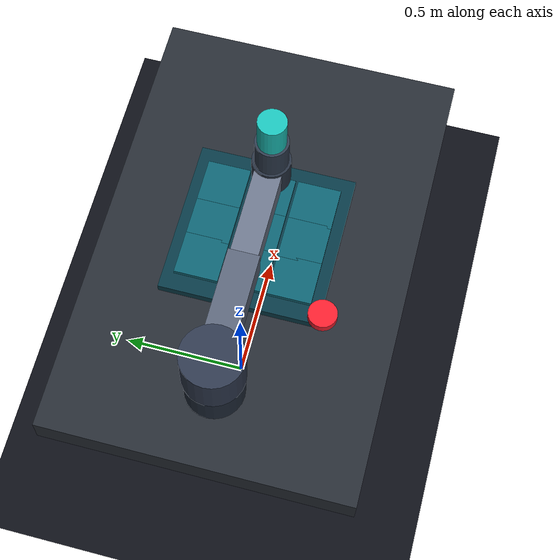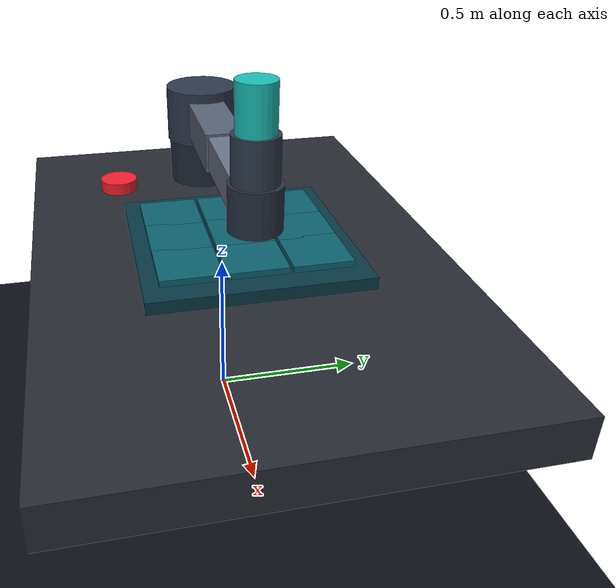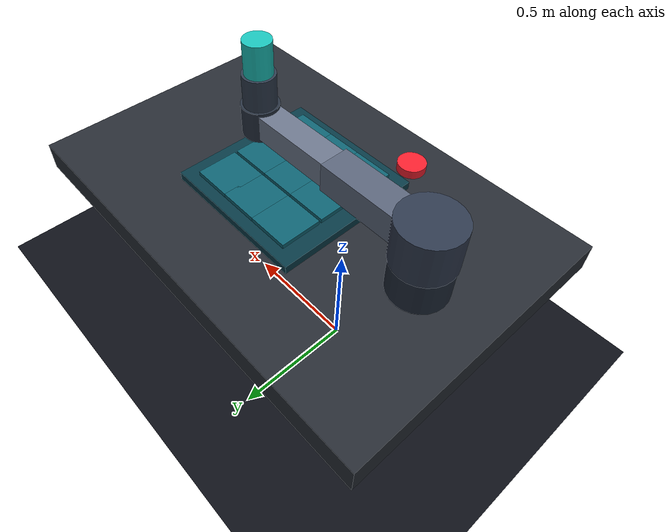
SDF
<?xml version="1.0"?>
<sdf version="1.9">
  <world name="robotlab_ur5e_cell">
    <gravity>0 0 -9.81</gravity>
    <plugin filename="gz-sim-physics-system" name="gz::sim::systems::Physics"/>
    <plugin filename="gz-sim-user-commands-system" name="gz::sim::systems::UserCommands"/>
    <plugin filename="gz-sim-scene-broadcaster-system" name="gz::sim::systems::SceneBroadcaster"/>
    <plugin filename="gz-sim-sensors-system" name="gz::sim::systems::Sensors"><render_engine>ogre2</render_engine></plugin>
    <gui fullscreen="0">
      <plugin filename="MinimalScene" name="3D View"><engine>ogre2</engine><scene>scene</scene><ambient_light>0.65 0.65 0.65</ambient_light><background_color>0.02 0.03 0.06</background_color><camera_pose>-1.35 -1.35 1.55 0 0.68 0.78</camera_pose><camera_clip><near>0.01</near><far>100</far></camera_clip></plugin>
      <plugin filename="GzSceneManager" name="Scene Manager"/>
    </gui>
    <scene><ambient>0.25 0.25 0.28 1</ambient><background>0.02 0.03 0.06 1</background><shadows>true</shadows></scene>
    <light name="key_light" type="directional"><cast_shadows>true</cast_shadows><pose>-1 -1 3 0.4 0 0</pose><diffuse>0.95 0.95 0.9 1</diffuse><specular>0.25 0.25 0.25 1</specular><direction>0.3 0.2 -1</direction></light>
    <model name="ground"><static>true</static><link name="link"><collision name="collision"><geometry><plane><normal>0 0 1</normal><size>20 20</size></plane></geometry></collision><visual name="visual"><geometry><plane><normal>0 0 1</normal><size>20 20</size></plane></geometry><material><diffuse>0.05 0.06 0.09 1</diffuse></material></visual></link></model>
    <model name="worktable"><static>true</static><pose>0.25 0 0.62 0 0 0</pose><link name="link"><collision name="collision"><geometry><box><size>1.8 1.2 0.12</size></box></geometry></collision><visual name="visual"><geometry><box><size>1.8 1.2 0.12</size></box></geometry><material><diffuse>0.15 0.17 0.2 1</diffuse></material></visual></link></model>
    <model name="board"><static>true</static><pose>0.28 0 0.72 0 0 0</pose><link name="link"><collision name="collision"><geometry><box><size>0.62 0.62 0.035</size></box></geometry></collision><visual name="visual"><geometry><box><size>0.62 0.62 0.035</size></box></geometry><material><diffuse>0.03 0.22 0.27 1</diffuse><ambient>0.02 0.08 0.1 1</ambient></material></visual></link></model>
    <!-- Cell centres, row-major 0..8. -->
    <model name="cell_0"><static>true</static><pose>0.12 -0.18 0.75 0 0 0</pose><link name="link"><visual name="visual"><geometry><box><size>0.17 0.17 0.018</size></box></geometry><material><diffuse>0.05 0.38 0.44 1</diffuse></material></visual></link></model>
    <model name="cell_1"><static>true</static><pose>0.28 -0.18 0.75 0 0 0</pose><link name="link"><visual name="visual"><geometry><box><size>0.17 0.17 0.018</size></box></geometry><material><diffuse>0.05 0.38 0.44 1</diffuse></material></visual></link></model>
    <model name="cell_2"><static>true</static><pose>0.44 -0.18 0.75 0 0 0</pose><link name="link"><visual name="visual"><geometry><box><size>0.17 0.17 0.018</size></box></geometry><material><diffuse>0.05 0.38 0.44 1</diffuse></material></visual></link></model>
    <model name="cell_3"><static>true</static><pose>0.12 0 0.75 0 0 0</pose><link name="link"><visual name="visual"><geometry><box><size>0.17 0.17 0.018</size></box></geometry><material><diffuse>0.05 0.38 0.44 1</diffuse></material></visual></link></model>
    <model name="cell_4"><static>true</static><pose>0.28 0 0.75 0 0 0</pose><link name="link"><visual name="visual"><geometry><box><size>0.17 0.17 0.018</size></box></geometry><material><diffuse>0.05 0.38 0.44 1</diffuse></material></visual></link></model>
    <model name="cell_5"><static>true</static><pose>0.44 0 0.75 0 0 0</pose><link name="link"><visual name="visual"><geometry><box><size>0.17 0.17 0.018</size></box></geometry><material><diffuse>0.05 0.38 0.44 1</diffuse></material></visual></link></model>
    <model name="cell_6"><static>true</static><pose>0.12 0.18 0.75 0 0 0</pose><link name="link"><visual name="visual"><geometry><box><size>0.17 0.17 0.018</size></box></geometry><material><diffuse>0.05 0.38 0.44 1</diffuse></material></visual></link></model>
    <model name="cell_7"><static>true</static><pose>0.28 0.18 0.75 0 0 0</pose><link name="link"><visual name="visual"><geometry><box><size>0.17 0.17 0.018</size></box></geometry><material><diffuse>0.05 0.38 0.44 1</diffuse></material></visual></link></model>
    <model name="cell_8"><static>true</static><pose>0.44 0.18 0.75 0 0 0</pose><link name="link"><visual name="visual"><geometry><box><size>0.17 0.17 0.018</size></box></geometry><material><diffuse>0.05 0.38 0.44 1</diffuse></material></visual></link></model>

    <model name="ur5e_reference"><pose>-0.35 0 0.76 0 0 0</pose><self_collide>false</self_collide>
      <link name="base_link"><gravity>false</gravity><inertial><mass>4</mass><inertia><ixx>0.02</ixx><iyy>0.02</iyy><izz>0.02</izz><ixy>0</ixy><ixz>0</ixz><iyz>0</iyz></inertia></inertial><visual name="visual"><geometry><cylinder><radius>0.115</radius><length>0.16</length></cylinder></geometry><material><diffuse>0.12 0.16 0.22 1</diffuse></material></visual><collision name="collision"><geometry><cylinder><radius>0.115</radius><length>0.16</length></cylinder></geometry></collision></link>
      <link name="shoulder_link"><pose relative_to="base_link">0 0 0.16 0 0 0</pose><gravity>false</gravity><inertial><mass>2</mass><inertia><ixx>0.02</ixx><iyy>0.02</iyy><izz>0.02</izz><ixy>0</ixy><ixz>0</ixz><iyz>0</iyz></inertia></inertial><visual name="visual"><geometry><cylinder><radius>0.12</radius><length>0.18</length></cylinder></geometry><material><diffuse>0.18 0.22 0.3 1</diffuse></material></visual></link>
      <link name="upper_arm_link"><pose relative_to="shoulder_link">0 0 0 0 0 0</pose><gravity>false</gravity><inertial><mass>3</mass><inertia><ixx>0.03</ixx><iyy>0.03</iyy><izz>0.03</izz><ixy>0</ixy><ixz>0</ixz><iyz>0</iyz></inertia></inertial><visual name="visual"><pose>0.2125 0 0 0 0 0</pose><geometry><box><size>0.425 0.12 0.12</size></box></geometry><material><diffuse>0.35 0.39 0.47 1</diffuse></material></visual><collision name="collision"><pose>0.2125 0 0 0 0 0</pose><geometry><box><size>0.425 0.12 0.12</size></box></geometry></collision></link>
      <link name="forearm_link"><pose relative_to="upper_arm_link">0.425 0 0 0 0 0</pose><gravity>false</gravity><inertial><mass>2</mass><inertia><ixx>0.025</ixx><iyy>0.025</iyy><izz>0.025</izz><ixy>0</ixy><ixz>0</ixz><iyz>0</iyz></inertia></inertial><visual name="visual"><pose>0.196 0 0 0 0 0</pose><geometry><box><size>0.392 0.105 0.105</size></box></geometry><material><diffuse>0.42 0.46 0.54 1</diffuse></material></visual><collision name="collision"><pose>0.196 0 0 0 0 0</pose><geometry><box><size>0.392 0.105 0.105</size></box></geometry></collision></link>
      <link name="wrist_1_link"><pose relative_to="forearm_link">0.392 0 0 0 0 0</pose><gravity>false</gravity><visual name="visual"><geometry><cylinder><radius>0.075</radius><length>0.13</length></cylinder></geometry><material><diffuse>0.15 0.19 0.25 1</diffuse></material></visual><collision name="collision"><geometry><cylinder><radius>0.075</radius><length>0.13</length></cylinder></geometry></collision></link>
      <link name="wrist_2_link"><pose relative_to="wrist_1_link">0 0 0.13 0 0 0</pose><gravity>false</gravity><visual name="visual"><geometry><cylinder><radius>0.065</radius><length>0.13</length></cylinder></geometry><material><diffuse>0.18 0.23 0.3 1</diffuse></material></visual><collision name="collision"><geometry><cylinder><radius>0.065</radius><length>0.13</length></cylinder></geometry></collision></link>
      <link name="wrist_3_link"><pose relative_to="wrist_2_link">0 0 0.13 0 0 0</pose><gravity>false</gravity><visual name="visual"><geometry><cylinder><radius>0.055</radius><length>0.14</length></cylinder></geometry><material><diffuse>0.1 0.75 0.72 1</diffuse><emissive>0.01 0.08 0.07 1</emissive></material></visual><collision name="collision"><geometry><cylinder><radius>0.055</radius><length>0.14</length></cylinder></geometry></collision></link>
      <joint name="base_anchor" type="fixed"><parent>world</parent><child>base_link</child></joint>
      <joint name="shoulder_pan_joint" type="revolute"><pose relative_to="base_link">0 0 0.16 0 0 0</pose><parent>base_link</parent><child>shoulder_link</child><axis><xyz>0 0 1</xyz><limit><lower>-6.28</lower><upper>6.28</upper></limit></axis></joint>
      <joint name="shoulder_lift_joint" type="revolute"><pose relative_to="shoulder_link">0 0 0 0 0 0</pose><parent>shoulder_link</parent><child>upper_arm_link</child><axis><xyz>0 1 0</xyz><limit><lower>-2.5</lower><upper>0.2</upper></limit></axis></joint>
      <joint name="elbow_joint" type="revolute"><pose relative_to="upper_arm_link">0.425 0 0 0 0 0</pose><parent>upper_arm_link</parent><child>forearm_link</child><axis><xyz>0 1 0</xyz><limit><lower>-2.8</lower><upper>2.8</upper></limit></axis></joint>
      <joint name="wrist_1_joint" type="revolute"><pose relative_to="forearm_link">0.392 0 0 0 0 0</pose><parent>forearm_link</parent><child>wrist_1_link</child><axis><xyz>0 1 0</xyz><limit><lower>-3.2</lower><upper>0.2</upper></limit></axis></joint>
      <joint name="wrist_2_joint" type="revolute"><pose relative_to="wrist_1_link">0 0 0.13 0 0 0</pose><parent>wrist_1_link</parent><child>wrist_2_link</child><axis><xyz>0 0 1</xyz><limit><lower>-6.28</lower><upper>6.28</upper></limit></axis></joint>
      <joint name="wrist_3_joint" type="revolute"><pose relative_to="wrist_2_link">0 0 0.13 0 0 0</pose><parent>wrist_2_link</parent><child>wrist_3_link</child><axis><xyz>0 1 0</xyz><limit><lower>-6.28</lower><upper>6.28</upper></limit></axis></joint>
      <plugin filename="gz-sim-joint-state-publisher-system" name="gz::sim::systems::JointStatePublisher"/>
      <plugin filename="gz-sim-joint-position-controller-system" name="gz::sim::systems::JointPositionController"><joint_name>shoulder_pan_joint</joint_name><topic>/robotlab/ur5e/shoulder_pan_joint/cmd</topic><p_gain>8</p_gain><i_gain>0.05</i_gain><d_gain>0.5</d_gain></plugin>
      <plugin filename="gz-sim-joint-position-controller-system" name="gz::sim::systems::JointPositionController"><joint_name>shoulder_lift_joint</joint_name><topic>/robotlab/ur5e/shoulder_lift_joint/cmd</topic><p_gain>8</p_gain><i_gain>0.05</i_gain><d_gain>0.5</d_gain></plugin>
      <plugin filename="gz-sim-joint-position-controller-system" name="gz::sim::systems::JointPositionController"><joint_name>elbow_joint</joint_name><topic>/robotlab/ur5e/elbow_joint/cmd</topic><p_gain>8</p_gain><i_gain>0.05</i_gain><d_gain>0.5</d_gain></plugin>
      <plugin filename="gz-sim-joint-position-controller-system" name="gz::sim::systems::JointPositionController"><joint_name>wrist_1_joint</joint_name><topic>/robotlab/ur5e/wrist_1_joint/cmd</topic><p_gain>8</p_gain><i_gain>0.05</i_gain><d_gain>0.5</d_gain></plugin>
      <plugin filename="gz-sim-joint-position-controller-system" name="gz::sim::systems::JointPositionController"><joint_name>wrist_2_joint</joint_name><topic>/robotlab/ur5e/wrist_2_joint/cmd</topic><p_gain>8</p_gain><i_gain>0.05</i_gain><d_gain>0.5</d_gain></plugin>
      <plugin filename="gz-sim-joint-position-controller-system" name="gz::sim::systems::JointPositionController"><joint_name>wrist_3_joint</joint_name><topic>/robotlab/ur5e/wrist_3_joint/cmd</topic><p_gain>8</p_gain><i_gain>0.05</i_gain><d_gain>0.5</d_gain></plugin>
    </model>
    <model name="demo_token"><pose>-0.02 -0.32 0.81 0 0 0</pose><link name="link"><inertial><mass>0.04</mass><inertia><ixx>0.0001</ixx><iyy>0.0001</iyy><izz>0.0001</izz><ixy>0</ixy><ixz>0</ixz><iyz>0</iyz></inertia></inertial><visual name="visual"><geometry><cylinder><radius>0.055</radius><length>0.035</length></cylinder></geometry><material><diffuse>0.95 0.12 0.18 1</diffuse><emissive>0.08 0.01 0.01 1</emissive></material></visual><collision name="collision"><geometry><cylinder><radius>0.055</radius><length>0.035</length></cylinder></geometry></collision></link></model>
    <model name="overhead_camera"><static>true</static><pose>0.28 0 2.05 0 0 0</pose><link name="link"><sensor name="board_camera" type="camera"><pose>0 0 0 -1.5708 0 -1.5708</pose><camera><horizontal_fov>1.05</horizontal_fov><image><width>640</width><height>480</height><format>R8G8B8</format></image><clip><near>0.05</near><far>10</far></clip></camera><update_rate>15</update_rate></sensor></link></model>
  </world>
</sdf>
